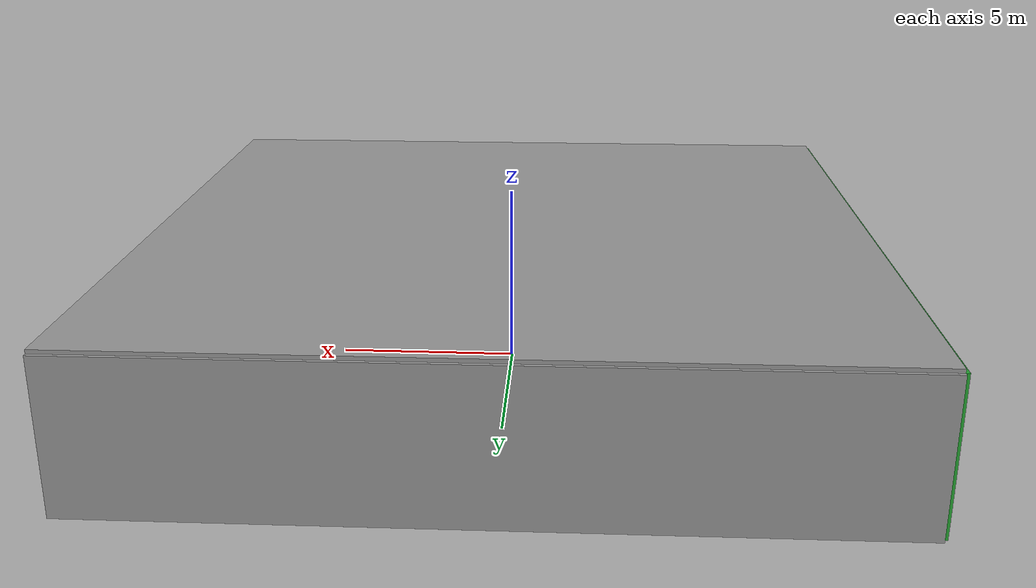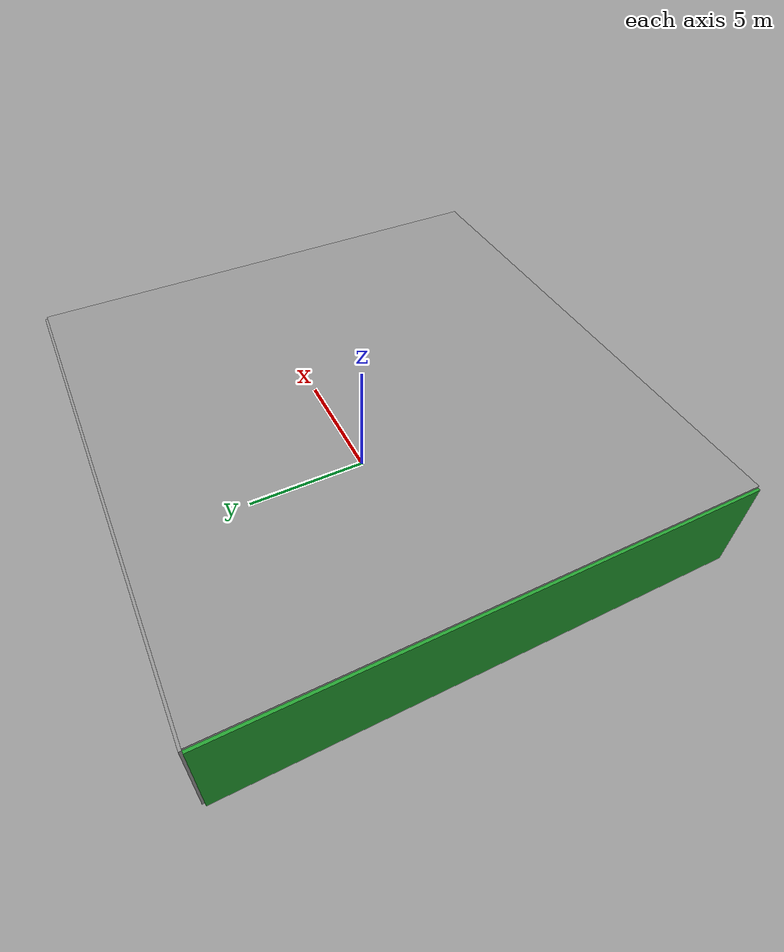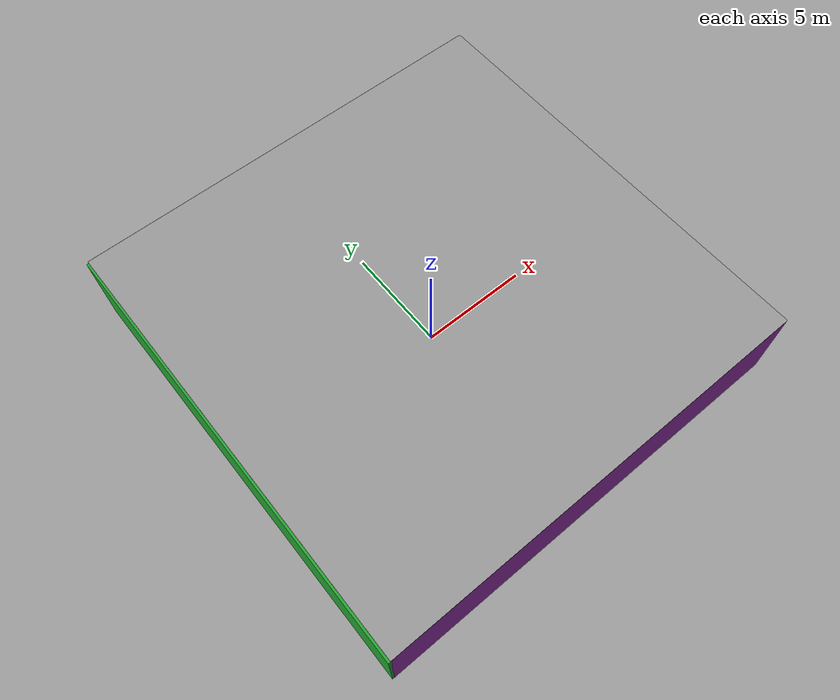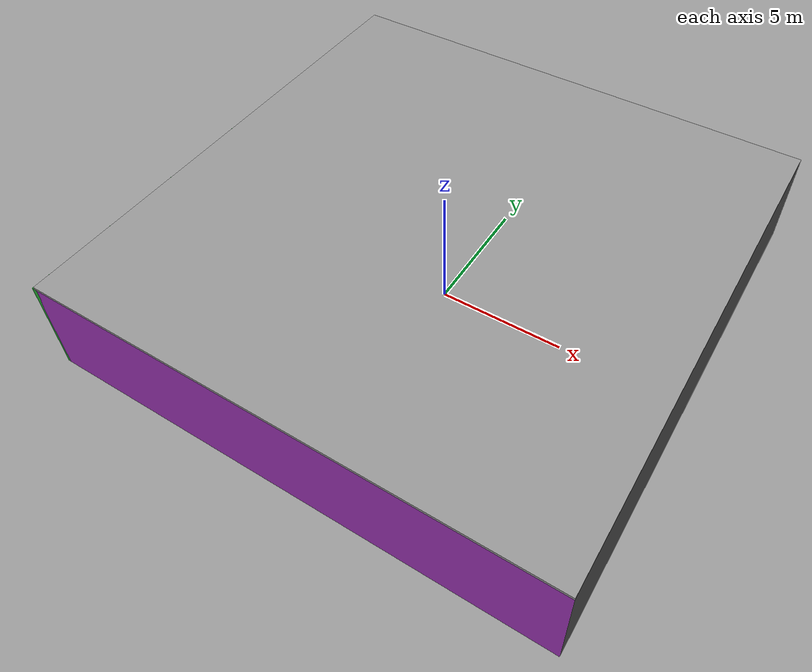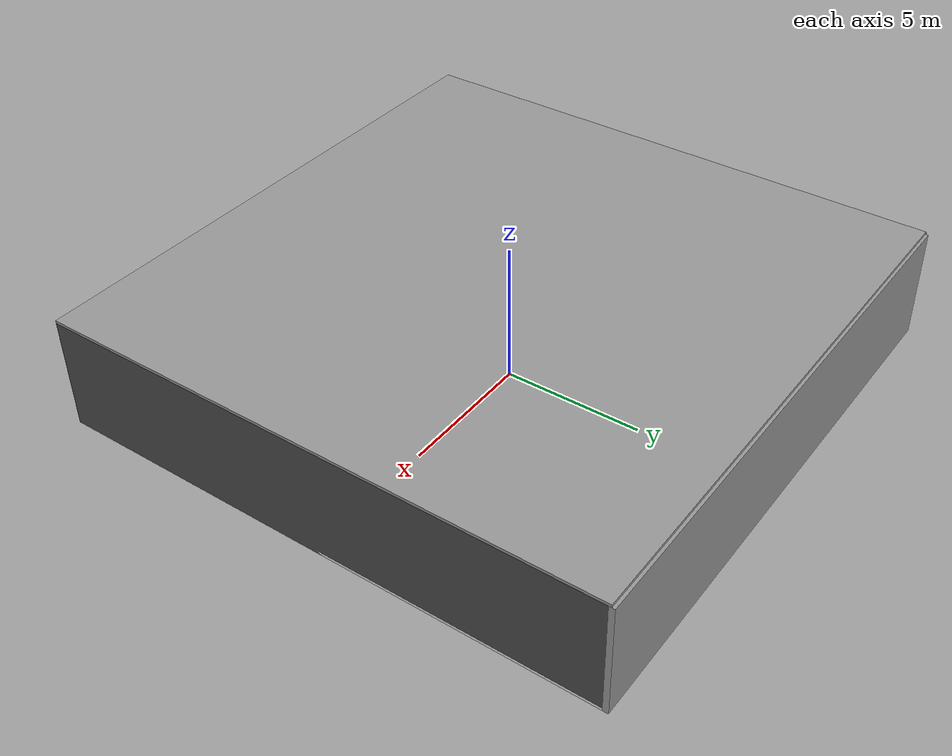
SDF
<sdf version="1.4">
 <world name="default">
  <physics type="ode">
   <max_step_size>0.001</max_step_size>
   <real_time_factor>1</real_time_factor>
   <real_time_update_rate>1000</real_time_update_rate>
   <gravity>0 0 -9.8</gravity>
  </physics>
  <scene><ambient>0.4 0.4 0.4 1</ambient><background>0.7 0.7 0.7 1</background><shadows>1</shadows></scene>
  <model name="Surrounding">
   <static>1</static>
   <link name="Ceiling">
    <collision name="Ceiling_Collision"><geometry><box><size>20 20 0.1</size></box></geometry></collision>
    <visual name="Ceiling_Visual">
     <geometry><box><size>20 20 0.1</size></box></geometry>
     <material>
      <script><uri>file://media/materials/scripts/gazebo.material</uri><name>Gazebo/Grey</name></script>
     </material>
    </visual>
    <pose>0 0 4.05 0 0 0</pose>
   </link>
   <link name="Wall_South">
    <collision name="Wall_South_Collision">
     <geometry><box><size>20 0 4</size></box></geometry>
     <pose>0 0 2 0 -0 0</pose>
    </collision>
    <visual name="Wall_South_Visual">
     <pose>0 0 2 0 -0 0</pose>
     <geometry><box><size>20 0 4</size></box></geometry>
     <material>
      <script><uri>file://media/materials/scripts/gazebo.material</uri><name>Gazebo/Purple</name></script>
     </material>
    </visual>
    <velocity_decay><linear>0</linear><angular>0</angular></velocity_decay>
    <pose>0 -10 0 0 -0 0</pose>
   </link>
   <link name="Wall_East">
    <collision name="Wall_21_Collision">
     <geometry><box><size>20 0 4</size></box></geometry>
     <pose>0 0 2 0 -0 0</pose>
    </collision>
    <visual name="Wall_21_Visual">
     <pose>0 0 2 0 -0 0</pose>
     <geometry><box><size>20 0 4</size></box></geometry>
     <material>
      <script><uri>file://media/materials/scripts/gazebo.material</uri><name>Gazebo/Road</name></script>
     </material>
    </visual>
    <velocity_decay><linear>0</linear><angular>0</angular></velocity_decay>
    <pose>10 0 0 0 -0 1.5708</pose>
   </link>
   <link name="Wall_North">
    <collision name="Wall_22_Collision">
     <geometry><box><size>20 0.2 4</size></box></geometry>
     <pose>0 0 2 0 -0 0</pose>
    </collision>
    <visual name="Wall_22_Visual">
     <pose>0 0 2 0 -0 0</pose>
     <geometry><box><size>20 0.2 4</size></box></geometry>
     <material>
      <script><uri>file://media/materials/scripts/gazebo.material</uri><name>Gazebo/GreyGradientSky</name></script>
     </material>
    </visual>
    <velocity_decay><linear>0</linear><angular>0</angular></velocity_decay>
    <pose>0 10 0 0 -0 0</pose>
   </link>
   <link name="Wall_West">
    <collision name="Wall_23_Collision">
     <geometry><box><size>20 0.2 4</size></box></geometry>
     <pose>0 0 2 0 -0 0</pose>
    </collision>
    <visual name="Wall_23_Visual">
     <pose>0 0 2 0 -0 0</pose>
     <geometry><box><size>20 0.2 4</size></box></geometry>
     <material>
      <script><uri>file://media/materials/scripts/gazebo.material</uri><name>Gazebo/GreenGlow</name></script>
     </material>
    </visual>
    <velocity_decay><linear>0</linear><angular>0</angular></velocity_decay>
    <pose>-10 0 0 0 0 -1.5708</pose>
   </link>
   <link name="Ground_link">
    <collision name="collision">
     <pose>0 0 .05 0 -0 0</pose>
     <geometry><box><size>20 20 0.1</size></box></geometry>
    </collision>
    <visual name="visual">
     <pose>0 0 .05 0 -0 0</pose>
     <geometry><box><size>20 20 0.1</size></box></geometry>
     <material>
      <script><uri>file://media/materials/scripts/gazebo.material</uri><name>Gazebo/WhiteGlow</name></script>
     </material>
    </visual>
   </link>
   <static>1</static>
  </model>
  <spherical_coordinates>
   <surface_model>EARTH_WGS84</surface_model>
   <latitude_deg>0</latitude_deg>
   <longitude_deg>0</longitude_deg>
   <elevation>0</elevation>
   <heading_deg>0</heading_deg>
  </spherical_coordinates>
  <light name="lightball_0" type="diffuse">
   <diffuse>0.8 0.8 0.8 1</diffuse>
   <specular>0.2 0.2 0.2 1</specular>
   <attenuation>
    <range>100</range>
    <constant>0.7</constant>
    <linear>0.01</linear>
    <quadratic>0.001</quadratic>
   </attenuation>
   <direction>-0.5 0.1 -0.9</direction>
   <pose>-6.49342058537 9.27249031603 1.32399773309 0 0 0</pose>
  </light>
  <light name="lightball_1" type="diffuse">
   <diffuse>0.8 0.8 0.8 1</diffuse>
   <specular>0.2 0.2 0.2 1</specular>
   <attenuation>
    <range>100</range>
    <constant>0.7</constant>
    <linear>0.01</linear>
    <quadratic>0.001</quadratic>
   </attenuation>
   <direction>-0.5 0.1 -0.9</direction>
   <pose>1.65856857663 7.59694883691 3.04073683495 0 0 0</pose>
  </light>
  <light name="lightball_2" type="diffuse">
   <diffuse>0.8 0.8 0.8 1</diffuse>
   <specular>0.2 0.2 0.2 1</specular>
   <attenuation>
    <range>100</range>
    <constant>0.7</constant>
    <linear>0.01</linear>
    <quadratic>0.001</quadratic>
   </attenuation>
   <direction>-0.5 0.1 -0.9</direction>
   <pose>4.80512513188 4.52526554332 2.30996514559 0 0 0</pose>
  </light>
  <light name="lightball_3" type="diffuse">
   <diffuse>0.8 0.8 0.8 1</diffuse>
   <specular>0.2 0.2 0.2 1</specular>
   <attenuation>
    <range>100</range>
    <constant>0.7</constant>
    <linear>0.01</linear>
    <quadratic>0.001</quadratic>
   </attenuation>
   <direction>-0.5 0.1 -0.9</direction>
   <pose>-5.58297169564 -0.892547575026 3.04832253717 0 0 0</pose>
  </light>
  <light name="lightball_4" type="diffuse">
   <diffuse>0.8 0.8 0.8 1</diffuse>
   <specular>0.2 0.2 0.2 1</specular>
   <attenuation>
    <range>100</range>
    <constant>0.7</constant>
    <linear>0.01</linear>
    <quadratic>0.001</quadratic>
   </attenuation>
   <direction>-0.5 0.1 -0.9</direction>
   <pose>1.63580347524 8.19761213406 2.09435435158 0 0 0</pose>
  </light>
  <light name="lightball_5" type="diffuse">
   <diffuse>0.8 0.8 0.8 1</diffuse>
   <specular>0.2 0.2 0.2 1</specular>
   <attenuation>
    <range>100</range>
    <constant>0.7</constant>
    <linear>0.01</linear>
    <quadratic>0.001</quadratic>
   </attenuation>
   <direction>-0.5 0.1 -0.9</direction>
   <pose>2.31299421912 9.88491961178 3.00286692985 0 0 0</pose>
  </light>
  <light name="lightball_6" type="diffuse">
   <diffuse>0.8 0.8 0.8 1</diffuse>
   <specular>0.2 0.2 0.2 1</specular>
   <attenuation>
    <range>100</range>
    <constant>0.7</constant>
    <linear>0.01</linear>
    <quadratic>0.001</quadratic>
   </attenuation>
   <direction>-0.5 0.1 -0.9</direction>
   <pose>8.4622165728 6.52466639806 1.09256048269 0 0 0</pose>
  </light>
  <light name="lightball_7" type="diffuse">
   <diffuse>0.8 0.8 0.8 1</diffuse>
   <specular>0.2 0.2 0.2 1</specular>
   <attenuation>
    <range>100</range>
    <constant>0.7</constant>
    <linear>0.01</linear>
    <quadratic>0.001</quadratic>
   </attenuation>
   <direction>-0.5 0.1 -0.9</direction>
   <pose>7.42819599762 -6.12630713219 2.5826376306 0 0 0</pose>
  </light>
  <light name="lightball_8" type="diffuse">
   <diffuse>0.8 0.8 0.8 1</diffuse>
   <specular>0.2 0.2 0.2 1</specular>
   <attenuation>
    <range>100</range>
    <constant>0.7</constant>
    <linear>0.01</linear>
    <quadratic>0.001</quadratic>
   </attenuation>
   <direction>-0.5 0.1 -0.9</direction>
   <pose>3.7176747441 8.12437718957 3.19807163772 0 0 0</pose>
  </light>
  <light name="lightball_9" type="diffuse">
   <diffuse>0.8 0.8 0.8 1</diffuse>
   <specular>0.2 0.2 0.2 1</specular>
   <attenuation>
    <range>100</range>
    <constant>0.7</constant>
    <linear>0.01</linear>
    <quadratic>0.001</quadratic>
   </attenuation>
   <direction>-0.5 0.1 -0.9</direction>
   <pose>4.896775524 6.70447324912 1.56440798556 0 0 0</pose>
  </light>
  <light name="lightball_10" type="diffuse">
   <diffuse>0.8 0.8 0.8 1</diffuse>
   <specular>0.2 0.2 0.2 1</specular>
   <attenuation>
    <range>100</range>
    <constant>0.7</constant>
    <linear>0.01</linear>
    <quadratic>0.001</quadratic>
   </attenuation>
   <direction>-0.5 0.1 -0.9</direction>
   <pose>-6.63976270962 -1.43810318057 0.631266455542 0 0 0</pose>
  </light>
  <light name="lightball_11" type="diffuse">
   <diffuse>0.8 0.8 0.8 1</diffuse>
   <specular>0.2 0.2 0.2 1</specular>
   <attenuation>
    <range>100</range>
    <constant>0.7</constant>
    <linear>0.01</linear>
    <quadratic>0.001</quadratic>
   </attenuation>
   <direction>-0.5 0.1 -0.9</direction>
   <pose>-7.09670456212 -7.44557769399 1.68249828085 0 0 0</pose>
  </light>
  <include>
   <uri>model://textured_shapes</uri>
   <pose>-0.539540515425 -1.87008545953 0 0 0 1.28915721511</pose>
  </include>
  <include>
   <uri>model://robocup_3Dsim_goal</uri>
   <pose>1.31438666961 7.8313183837 0 0 0 0.826302135631</pose>
  </include>
  <include>
   <uri>model://construction_cone</uri>
   <pose>7.95153436925 -4.50681151894 0 0 0 0.388248411696</pose>
  </include>
 </world>
</sdf>

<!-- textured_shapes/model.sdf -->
<sdf version="1.6">
  <model name="textured_shapes">
    <pose>0 0 0.5 0 0 0</pose>
    <link name="box">
      <pose>0 -1.5 0 0 0 0</pose>
      <collision name="collision">
        <geometry>
          <box>
            <size>1 1 1</size>
          </box>
        </geometry>
      </collision>
      <visual name="visual">
        <geometry>
          <box>
            <size>1 1 1</size>
          </box>
        </geometry>
        <material>
          <script>
            <uri>model://../model_source/models/textured_shapes/materials/scripts</uri>
            <uri>model://../model_source/models/textured_shapes/materials/textures</uri>
            <name>TexturedShape/Squares</name>
          </script>
        </material>
      </visual>
    </link>
    <link name="sphere">
      <collision name="collision">
        <geometry>
          <sphere>
            <radius>0.5</radius>
          </sphere>
        </geometry>
      </collision>
      <visual name="visual">
        <geometry>
          <sphere>
            <radius>0.5</radius>
          </sphere>
        </geometry>
        <material>
          <script>
            <uri>model://../model_source/models/textured_shapes/materials/scripts</uri>
            <uri>model://../model_source/models/textured_shapes/materials/textures</uri>
            <name>TexturedShape/Squares</name>
          </script>
        </material>
      </visual>
    </link>
    <link name="cylinder">
      <pose>0 1.5 0 0 0 0</pose>
      <collision name="collision">
        <geometry>
          <cylinder>
            <radius>0.5</radius>
            <length>1</length>
          </cylinder>
        </geometry>
      </collision>
      <visual name="visual">
        <geometry>
          <cylinder>
            <radius>0.5</radius>
            <length>1</length>
          </cylinder>
        </geometry>
        <material>
          <script>
            <uri>model://../model_source/models/textured_shapes/materials/scripts</uri>
            <uri>model://../model_source/models/textured_shapes/materials/textures</uri>
            <name>TexturedShape/Squares</name>
          </script>
        </material>
      </visual>
    </link>
  </model>
</sdf>

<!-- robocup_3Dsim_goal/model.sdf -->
<sdf version="1.5">
  <model name="robocup_3d_goal">
    <static>true</static>
    <link name="left_post">
      <pose>0 1.05 0.45 0 0 0</pose>
      <collision name="collision">
        <geometry>
          <cylinder>
            <radius>0.05</radius>
            <length>0.9</length>
          </cylinder>
        </geometry>
      </collision>
      <visual name="visual">
        <geometry>
          <cylinder>
            <radius>0.05</radius>
            <length>0.9</length>
          </cylinder>
        </geometry>
        <material>
          <script>
            <uri>file://media/materials/scripts/gazebo.material</uri>
            <name>Gazebo/ZincYellow</name>
          </script>
        </material>
      </visual>
    </link>
    <link name="left_support_horiz_lower">
      <pose>0.30 1.05 0.01 0 0 0</pose>
      <collision name="collision">
        <geometry>
          <box>
            <size>0.50 0.02 0.02</size>
          </box>
        </geometry>
      </collision>
      <visual name="visual">
        <geometry>
          <box>
            <size>0.50 0.02 0.02</size>
          </box>
        </geometry>
        <material>
          <script>
            <uri>file://media/materials/scripts/gazebo.material</uri>
            <name>Gazebo/White</name>
          </script>
        </material>
      </visual>
    </link>
    <link name="left_support_horiz_upper">
      <pose>0.30 1.05 0.79 0 0 0</pose>
      <collision name="collision">
        <geometry>
          <box>
            <size>0.50 0.02 0.02</size>
          </box>
        </geometry>
      </collision>
      <visual name="visual">
        <geometry>
          <box>
            <size>0.50 0.02 0.02</size>
          </box>
        </geometry>
        <material>
          <script>
            <uri>file://media/materials/scripts/gazebo.material</uri>
            <name>Gazebo/White</name>
          </script>
        </material>
      </visual>
    </link>
    <link name="left_support_vertical">
      <pose>0.56 1.05 0.4 0 1.5708 0</pose>
      <collision name="collision">
        <geometry>
          <box>
            <size>0.80 0.02 0.02</size>
          </box>
        </geometry>
      </collision>
      <visual name="visual">
        <geometry>
          <box>
            <size>0.80 0.02 0.02</size>
          </box>
        </geometry>
        <material>
          <script>
            <uri>file://media/materials/scripts/gazebo.material</uri>
            <name>Gazebo/White</name>
          </script>
        </material>
      </visual>
    </link>
    <link name="right_support_horiz_lower">
      <pose>0.30 -1.05 0.01 0 0 0</pose>
      <collision name="collision">
        <geometry>
          <box>
            <size>0.50 0.02 0.02</size>
          </box>
        </geometry>
      </collision>
      <visual name="visual">
        <geometry>
          <box>
            <size>0.50 0.02 0.02</size>
          </box>
        </geometry>
        <material>
          <script>
            <uri>file://media/materials/scripts/gazebo.material</uri>
            <name>Gazebo/White</name>
          </script>
        </material>
      </visual>
    </link>
    <link name="right_support_horiz_upper">
      <pose>0.30 -1.05 0.79 0 0 0</pose>
      <collision name="collision">
        <geometry>
          <box>
            <size>0.50 0.02 0.02</size>
          </box>
        </geometry>
      </collision>
      <visual name="visual">
        <geometry>
          <box>
            <size>0.50 0.02 0.02</size>
          </box>
        </geometry>
        <material>
          <script>
            <uri>file://media/materials/scripts/gazebo.material</uri>
            <name>Gazebo/White</name>
          </script>
        </material>
      </visual>
    </link>
    <link name="right_support_vertical">
      <pose>0.56 -1.05 0.4 0 1.5708 0</pose>
      <collision name="collision">
        <geometry>
          <box>
            <size>0.80 0.02 0.02</size>
          </box>
        </geometry>
      </collision>
      <visual name="visual">
        <geometry>
          <box>
            <size>0.80 0.02 0.02</size>
          </box>
        </geometry>
        <material>
          <script>
            <uri>file://media/materials/scripts/gazebo.material</uri>
            <name>Gazebo/White</name>
          </script>
        </material>
      </visual>
    </link>
    <link name="center_support_horiz_lower">
      <pose>0.56 0 0.01 0 1.5708 0</pose>
      <collision name="collision">
        <geometry>
          <box>
            <size>0.02 2.08 0.02</size>
          </box>
        </geometry>
      </collision>
      <visual name="visual">
        <geometry>
          <box>
            <size>0.02 2.08 0.02</size>
          </box>
        </geometry>
        <material>
          <script>
            <uri>file://media/materials/scripts/gazebo.material</uri>
            <name>Gazebo/White</name>
          </script>
        </material>
      </visual>
    </link>
    <link name="center_support_horiz_upper">
      <pose>0.56 0 0.79 0 1.5708 0</pose>
      <collision name="collision">
        <geometry>
          <box>
            <size>0.02 2.08 0.02</size>
          </box>
        </geometry>
      </collision>
      <visual name="visual">
        <geometry>
          <box>
            <size>0.02 2.08 0.02</size>
          </box>
        </geometry>
        <material>
          <script>
            <uri>file://media/materials/scripts/gazebo.material</uri>
            <name>Gazebo/White</name>
          </script>
        </material>
      </visual>
    </link>
    <link name="right_post">
      <pose>0 -1.05 0.45 0 0 0</pose>
      <collision name="collision">
        <geometry>
          <cylinder>
            <radius>0.05</radius>
            <length>0.9</length>
          </cylinder>
        </geometry>
      </collision>
      <visual name="visual">
        <geometry>
          <cylinder>
            <radius>0.05</radius>
            <length>0.9</length>
          </cylinder>
        </geometry>
        <material>
          <script>
            <uri>file://media/materials/scripts/gazebo.material</uri>
            <name>Gazebo/ZincYellow</name>
          </script>
        </material>
      </visual>
    </link>
    <link name="crossbar">
      <pose>0 0 0.85 1.57 1.57 0</pose>
      <collision name="collision">
        <geometry>
          <cylinder>
            <radius>0.05</radius>
            <length>2.0</length>
          </cylinder>
        </geometry>
      </collision>
      <visual name="visual">
        <geometry>
          <cylinder>
            <radius>0.05</radius>
            <length>2.0</length>
          </cylinder>
        </geometry>
        <material>
          <script>
            <uri>file://media/materials/scripts/gazebo.material</uri>
            <name>Gazebo/ZincYellow</name>
          </script>
        </material>
      </visual>
    </link>
    <link name="center_net">
      <pose>0.56 0 0.40 0 0 0</pose>
      <collision name="collision">
        <geometry>
          <box>
            <size>0.01 2.1 0.80</size>
          </box>
        </geometry>
      </collision>
      <visual name="visual">
        <geometry>
          <box>
            <size>0.01 2.1 0.80</size>
          </box>
        </geometry>
        <material>
          <script>
            <uri>model://../model_source/models/robocup09_spl_field/materials/scripts/</uri>
            <uri>model://../model_source/models/robocup09_spl_field/materials/textures/</uri>
            <name>RoboCup/Net</name>
          </script>
        </material>
      </visual>
    </link>
    <link name="left_net">
      <pose>0.30 1.05 0.40 0 0 0</pose>
      <collision name="collision">
        <geometry>
          <box>
            <size>0.50 0.01 0.76</size>
          </box>
        </geometry>
      </collision>
      <visual name="visual">
        <geometry>
          <box>
            <size>0.50 0.01 0.76</size>
          </box>
        </geometry>
        <material>
          <script>
            <uri>model://../model_source/models/robocup09_spl_field/materials/scripts/</uri>
            <uri>model://../model_source/models/robocup09_spl_field/materials/textures/</uri>
            <name>RoboCup/Net</name>
          </script>
        </material>
      </visual>
    </link>
    <link name="right_net">
      <pose>0.30 -1.05 0.40 0 0 0</pose>
      <collision name="collision">
        <geometry>
          <box>
            <size>0.50 0.01 0.76</size>
          </box>
        </geometry>
      </collision>
      <visual name="visual">
        <geometry>
          <box>
            <size>0.50 0.01 0.76</size>
          </box>
        </geometry>
        <material>
          <script>
            <uri>model://../model_source/models/robocup09_spl_field/materials/scripts/</uri>
            <uri>model://../model_source/models/robocup09_spl_field/materials/textures/</uri>
            <name>RoboCup/Net</name>
          </script>
        </material>
      </visual>
    </link>
  </model>
</sdf>

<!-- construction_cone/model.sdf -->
<sdf version="1.5">
  <model name="Construction Cone">
    <link name="link">
      <collision name="collision">
        <geometry>
          <mesh>
            <scale>10 10 10</scale>
            <uri>file://isr-testbed/construction_cone/meshes/construction_cone.dae</uri>
          </mesh>
        </geometry>
      </collision>
      <visual name="visual">
        <geometry>
          <mesh>
            <scale>10 10 10</scale>
            <uri>file://isr-testbed/construction_cone/meshes/construction_cone.dae</uri>
          </mesh>
        </geometry>
      </visual>
    </link>
  </model>
</sdf>
